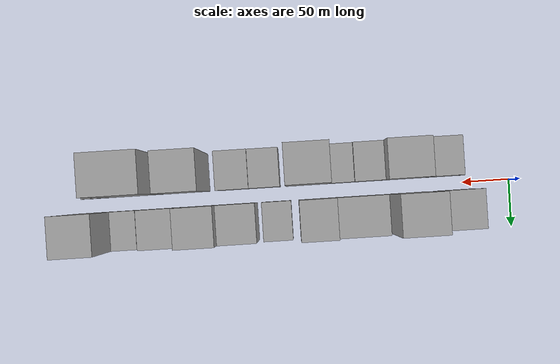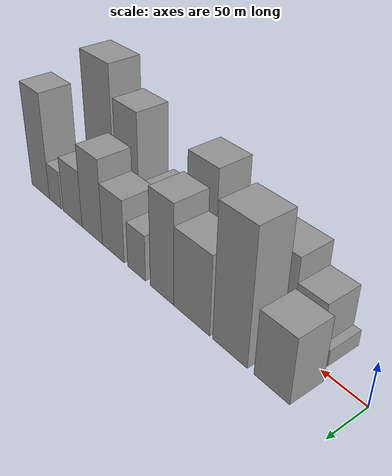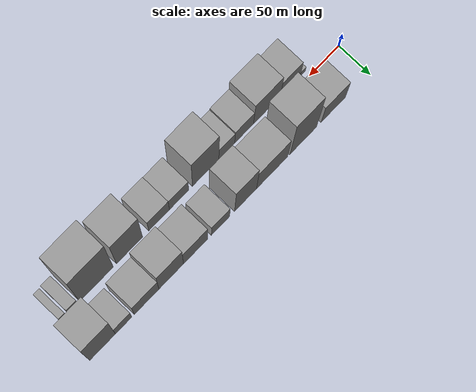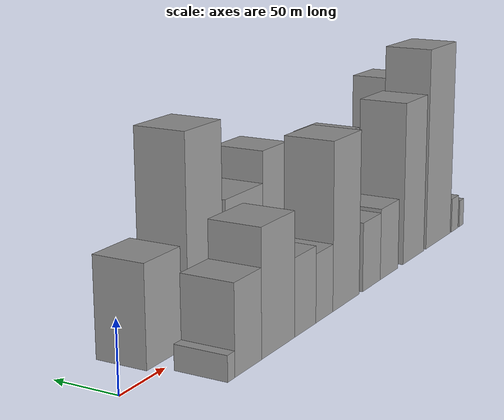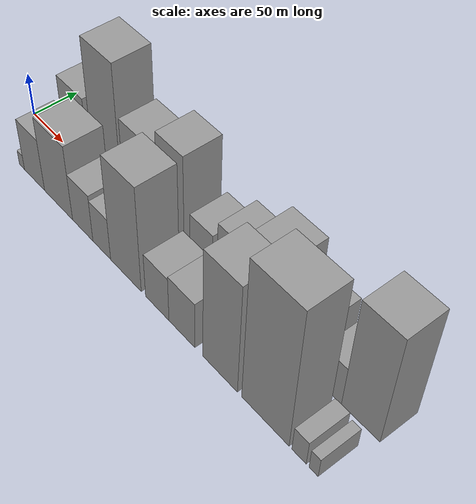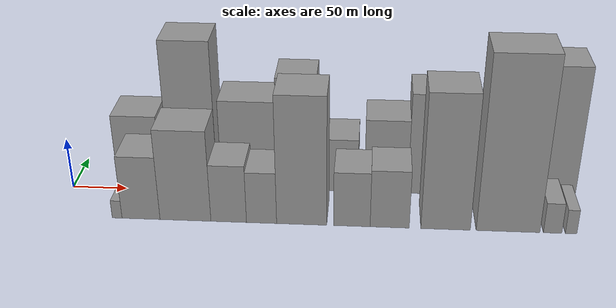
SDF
<sdf version="1.6">
 <world name="default">
  <scene>
   <sky><clouds><speed>12</speed></clouds></sky>
   <ambient>0.4 0.4 0.4 1</ambient>
   <background>0.7 0.7 0.7 1</background>
   <shadows>1</shadows>
  </scene>
  <gravity>0 0 -9.8066</gravity>
  <magnetic_field>6e-06 2.3e-05 -4.2e-05</magnetic_field>
  <physics default="0" name="default_physics" type="ode">
   <ode>
    <solver>
     <type>quick</type>
     <iters>10</iters>
     <sor>1.0</sor>
     <use_dynamic_moi_rescaling>0</use_dynamic_moi_rescaling>
    </solver>
    <constraints>
     <cfm>0</cfm>
     <erp>0.2</erp>
     <contact_max_correcting_vel>100</contact_max_correcting_vel>
     <contact_surface_layer>0.001</contact_surface_layer>
    </constraints>
   </ode>
   <max_step_size>0.004</max_step_size>
   <real_time_factor>1</real_time_factor>
   <real_time_update_rate>250</real_time_update_rate>
  </physics>
  <light name="sun" type="directional">
   <pose>0 0 10 0 0 0</pose>
   <diffuse>0.8 0.8 0.8 1</diffuse>
   <specular>0.2 0.2 0.2 1</specular>
   <attenuation>
    <range>1000</range>
    <constant>0.9</constant>
    <linear>0.01</linear>
    <quadratic>0.001</quadratic>
   </attenuation>
   <direction>-0.5 0.1 -0.9</direction>
  </light>
  <model name="building_1">
   <static>1</static>
   <pose>60.5274 27.5000 0 0.000000 0.000000 1.570796</pose>
   <link name="link">
    <pose>0 0 36.00 0 0 0</pose>
    <collision name="collision"><geometry><box><size>40.0000 41.0547 72.0000</size></box></geometry></collision>
    <visual name="visual">
     <cast_shadows>0</cast_shadows>
     <geometry><box><size>40.0000 41.0547 72.0000</size></box></geometry>
     <material>
      <script>
       <uri>model://grey_wall/materials/scripts</uri>
       <uri>model://grey_wall/materials/textures</uri>
       <name>vrc/grey_wall</name>
      </script>
     </material>
    </visual>
   </link>
  </model>
  <model name="building_2">
   <static>1</static>
   <pose>111.3470 27.5000 0 0.000000 0.000000 1.570796</pose>
   <link name="link">
    <pose>0 0 73.50 0 0 0</pose>
    <collision name="collision"><geometry><box><size>40.0000 44.5845 147.0000</size></box></geometry></collision>
    <visual name="visual">
     <cast_shadows>0</cast_shadows>
     <geometry><box><size>40.0000 44.5845 147.0000</size></box></geometry>
     <material>
      <script>
       <uri>model://grey_wall/materials/scripts</uri>
       <uri>model://grey_wall/materials/textures</uri>
       <name>vrc/grey_wall</name>
      </script>
     </material>
    </visual>
   </link>
  </model>
  <model name="building_3">
   <static>1</static>
   <pose>163.5459 27.5000 0 0.000000 0.000000 1.570796</pose>
   <link name="link">
    <pose>0 0 45.00 0 0 0</pose>
    <collision name="collision"><geometry><box><size>40.0000 51.8133 90.0000</size></box></geometry></collision>
    <visual name="visual">
     <cast_shadows>0</cast_shadows>
     <geometry><box><size>40.0000 51.8133 90.0000</size></box></geometry>
     <material>
      <script>
       <uri>model://grey_wall/materials/scripts</uri>
       <uri>model://grey_wall/materials/textures</uri>
       <name>vrc/grey_wall</name>
      </script>
     </material>
    </visual>
   </link>
  </model>
  <model name="building_4">
   <static>1</static>
   <pose>207.6033 27.5000 0 0.000000 0.000000 1.570796</pose>
   <link name="link">
    <pose>0 0 57.00 0 0 0</pose>
    <collision name="collision"><geometry><box><size>40.0000 36.3016 114.0000</size></box></geometry></collision>
    <visual name="visual">
     <cast_shadows>0</cast_shadows>
     <geometry><box><size>40.0000 36.3016 114.0000</size></box></geometry>
     <material>
      <script>
       <uri>model://grey_wall/materials/scripts</uri>
       <uri>model://grey_wall/materials/textures</uri>
       <name>vrc/grey_wall</name>
      </script>
     </material>
    </visual>
   </link>
  </model>
  <model name="building_5">
   <static>1</static>
   <pose>248.8121 27.5000 0 0.000000 0.000000 1.570796</pose>
   <link name="link">
    <pose>0 0 27.00 0 0 0</pose>
    <collision name="collision"><geometry><box><size>40.0000 30.1159 54.0000</size></box></geometry></collision>
    <visual name="visual">
     <cast_shadows>0</cast_shadows>
     <geometry><box><size>40.0000 30.1159 54.0000</size></box></geometry>
     <material>
      <script>
       <uri>model://grey_wall/materials/scripts</uri>
       <uri>model://grey_wall/materials/textures</uri>
       <name>vrc/grey_wall</name>
      </script>
     </material>
    </visual>
   </link>
  </model>
  <model name="building_6">
   <static>1</static>
   <pose>289.7577 27.5000 0 0.000000 0.000000 1.570796</pose>
   <link name="link">
    <pose>0 0 37.50 0 0 0</pose>
    <collision name="collision"><geometry><box><size>40.0000 39.7754 75.0000</size></box></geometry></collision>
    <visual name="visual">
     <cast_shadows>0</cast_shadows>
     <geometry><box><size>40.0000 39.7754 75.0000</size></box></geometry>
     <material>
      <script>
       <uri>model://grey_wall/materials/scripts</uri>
       <uri>model://grey_wall/materials/textures</uri>
       <name>vrc/grey_wall</name>
      </script>
     </material>
    </visual>
   </link>
  </model>
  <model name="building_7">
   <static>1</static>
   <pose>329.6346 27.5000 0 0.000000 0.000000 1.570796</pose>
   <link name="link">
    <pose>0 0 51.00 0 0 0</pose>
    <collision name="collision"><geometry><box><size>40.0000 39.9784 102.0000</size></box></geometry></collision>
    <visual name="visual">
     <cast_shadows>0</cast_shadows>
     <geometry><box><size>40.0000 39.9784 102.0000</size></box></geometry>
     <material>
      <script>
       <uri>model://grey_wall/materials/scripts</uri>
       <uri>model://grey_wall/materials/textures</uri>
       <name>vrc/grey_wall</name>
      </script>
     </material>
    </visual>
   </link>
  </model>
  <model name="building_8">
   <static>1</static>
   <pose>369.5319 27.5000 0 0.000000 0.000000 1.570796</pose>
   <link name="link">
    <pose>0 0 34.50 0 0 0</pose>
    <collision name="collision"><geometry><box><size>40.0000 39.8163 69.0000</size></box></geometry></collision>
    <visual name="visual">
     <cast_shadows>0</cast_shadows>
     <geometry><box><size>40.0000 39.8163 69.0000</size></box></geometry>
     <material>
      <script>
       <uri>model://grey_wall/materials/scripts</uri>
       <uri>model://grey_wall/materials/textures</uri>
       <name>vrc/grey_wall</name>
      </script>
     </material>
    </visual>
   </link>
  </model>
  <model name="building_9">
   <static>1</static>
   <pose>406.6243 27.5000 0 0.000000 0.000000 1.570796</pose>
   <link name="link">
    <pose>0 0 24.00 0 0 0</pose>
    <collision name="collision"><geometry><box><size>40.0000 26.3684 48.0000</size></box></geometry></collision>
    <visual name="visual">
     <cast_shadows>0</cast_shadows>
     <geometry><box><size>40.0000 26.3684 48.0000</size></box></geometry>
     <material>
      <script>
       <uri>model://grey_wall/materials/scripts</uri>
       <uri>model://grey_wall/materials/textures</uri>
       <name>vrc/grey_wall</name>
      </script>
     </material>
    </visual>
   </link>
  </model>
  <model name="building_10">
   <static>1</static>
   <pose>440.4687 27.5000 0 0.000000 0.000000 1.570796</pose>
   <link name="link">
    <pose>0 0 66.00 0 0 0</pose>
    <collision name="collision"><geometry><box><size>40.0000 41.3204 132.0000</size></box></geometry></collision>
    <visual name="visual">
     <cast_shadows>0</cast_shadows>
     <geometry><box><size>40.0000 41.3204 132.0000</size></box></geometry>
     <material>
      <script>
       <uri>model://grey_wall/materials/scripts</uri>
       <uri>model://grey_wall/materials/textures</uri>
       <name>vrc/grey_wall</name>
      </script>
     </material>
    </visual>
   </link>
  </model>
  <model name="building_11">
   <static>1</static>
   <pose>53.3683 -27.5000 0 0.000000 0.000000 1.570796</pose>
   <link name="link">
    <pose>0 0 9.00 0 0 0</pose>
    <collision name="collision"><geometry><box><size>40.0000 8.7366 18.0000</size></box></geometry></collision>
    <visual name="visual">
     <cast_shadows>0</cast_shadows>
     <geometry><box><size>40.0000 8.7366 18.0000</size></box></geometry>
     <material>
      <script>
       <uri>model://grey_wall/materials/scripts</uri>
       <uri>model://grey_wall/materials/textures</uri>
       <name>vrc/grey_wall</name>
      </script>
     </material>
    </visual>
   </link>
  </model>
  <model name="building_12">
   <static>1</static>
   <pose>74.6329 -27.5000 0 0.000000 0.000000 1.570796</pose>
   <link name="link">
    <pose>0 0 31.50 0 0 0</pose>
    <collision name="collision"><geometry><box><size>40.0000 33.7925 63.0000</size></box></geometry></collision>
    <visual name="visual">
     <cast_shadows>0</cast_shadows>
     <geometry><box><size>40.0000 33.7925 63.0000</size></box></geometry>
     <material>
      <script>
       <uri>model://grey_wall/materials/scripts</uri>
       <uri>model://grey_wall/materials/textures</uri>
       <name>vrc/grey_wall</name>
      </script>
     </material>
    </visual>
   </link>
  </model>
  <model name="building_13">
   <static>1</static>
   <pose>114.0617 -27.5000 0 0.000000 0.000000 1.570796</pose>
   <link name="link">
    <pose>0 0 45.00 0 0 0</pose>
    <collision name="collision"><geometry><box><size>40.0000 45.0651 90.0000</size></box></geometry></collision>
    <visual name="visual">
     <cast_shadows>0</cast_shadows>
     <geometry><box><size>40.0000 45.0651 90.0000</size></box></geometry>
     <material>
      <script>
       <uri>model://grey_wall/materials/scripts</uri>
       <uri>model://grey_wall/materials/textures</uri>
       <name>vrc/grey_wall</name>
      </script>
     </material>
    </visual>
   </link>
  </model>
  <model name="building_14">
   <static>1</static>
   <pose>152.2538 -27.5000 0 0.000000 0.000000 1.570796</pose>
   <link name="link">
    <pose>0 0 28.50 0 0 0</pose>
    <collision name="collision"><geometry><box><size>40.0000 31.3191 57.0000</size></box></geometry></collision>
    <visual name="visual">
     <cast_shadows>0</cast_shadows>
     <geometry><box><size>40.0000 31.3191 57.0000</size></box></geometry>
     <material>
      <script>
       <uri>model://grey_wall/materials/scripts</uri>
       <uri>model://grey_wall/materials/textures</uri>
       <name>vrc/grey_wall</name>
      </script>
     </material>
    </visual>
   </link>
  </model>
  <model name="building_15">
   <static>1</static>
   <pose>181.1343 -27.5000 0 0.000000 0.000000 1.570796</pose>
   <link name="link">
    <pose>0 0 25.50 0 0 0</pose>
    <collision name="collision"><geometry><box><size>40.0000 26.4420 51.0000</size></box></geometry></collision>
    <visual name="visual">
     <cast_shadows>0</cast_shadows>
     <geometry><box><size>40.0000 26.4420 51.0000</size></box></geometry>
     <material>
      <script>
       <uri>model://grey_wall/materials/scripts</uri>
       <uri>model://grey_wall/materials/textures</uri>
       <name>vrc/grey_wall</name>
      </script>
     </material>
    </visual>
   </link>
  </model>
  <model name="building_16">
   <static>1</static>
   <pose>216.2459 -27.5000 0 0.000000 0.000000 1.570796</pose>
   <link name="link">
    <pose>0 0 63.00 0 0 0</pose>
    <collision name="collision"><geometry><box><size>40.0000 43.7812 126.0000</size></box></geometry></collision>
    <visual name="visual">
     <cast_shadows>0</cast_shadows>
     <geometry><box><size>40.0000 43.7812 126.0000</size></box></geometry>
     <material>
      <script>
       <uri>model://grey_wall/materials/scripts</uri>
       <uri>model://grey_wall/materials/textures</uri>
       <name>vrc/grey_wall</name>
      </script>
     </material>
    </visual>
   </link>
  </model>
  <model name="building_17">
   <static>1</static>
   <pose>260.0047 -27.5000 0 0.000000 0.000000 1.570796</pose>
   <link name="link">
    <pose>0 0 27.00 0 0 0</pose>
    <collision name="collision"><geometry><box><size>40.0000 31.7364 54.0000</size></box></geometry></collision>
    <visual name="visual">
     <cast_shadows>0</cast_shadows>
     <geometry><box><size>40.0000 31.7364 54.0000</size></box></geometry>
     <material>
      <script>
       <uri>model://grey_wall/materials/scripts</uri>
       <uri>model://grey_wall/materials/textures</uri>
       <name>vrc/grey_wall</name>
      </script>
     </material>
    </visual>
   </link>
  </model>
  <model name="building_18">
   <static>1</static>
   <pose>292.7698 -27.5000 0 0.000000 0.000000 1.570796</pose>
   <link name="link">
    <pose>0 0 28.50 0 0 0</pose>
    <collision name="collision"><geometry><box><size>40.0000 33.7938 57.0000</size></box></geometry></collision>
    <visual name="visual">
     <cast_shadows>0</cast_shadows>
     <geometry><box><size>40.0000 33.7938 57.0000</size></box></geometry>
     <material>
      <script>
       <uri>model://grey_wall/materials/scripts</uri>
       <uri>model://grey_wall/materials/textures</uri>
       <name>vrc/grey_wall</name>
      </script>
     </material>
    </visual>
   </link>
  </model>
  <model name="building_19">
   <static>1</static>
   <pose>340.9510 -27.5000 0 0.000000 0.000000 1.570796</pose>
   <link name="link">
    <pose>0 0 66.00 0 0 0</pose>
    <collision name="collision"><geometry><box><size>40.0000 42.5685 132.0000</size></box></geometry></collision>
    <visual name="visual">
     <cast_shadows>0</cast_shadows>
     <geometry><box><size>40.0000 42.5685 132.0000</size></box></geometry>
     <material>
      <script>
       <uri>model://grey_wall/materials/scripts</uri>
       <uri>model://grey_wall/materials/textures</uri>
       <name>vrc/grey_wall</name>
      </script>
     </material>
    </visual>
   </link>
  </model>
  <model name="building_20">
   <static>1</static>
   <pose>394.4320 -27.5000 0 0.000000 0.000000 1.570796</pose>
   <link name="link">
    <pose>0 0 84.00 0 0 0</pose>
    <collision name="collision"><geometry><box><size>40.0000 54.3934 168.0000</size></box></geometry></collision>
    <visual name="visual">
     <cast_shadows>0</cast_shadows>
     <geometry><box><size>40.0000 54.3934 168.0000</size></box></geometry>
     <material>
      <script>
       <uri>model://grey_wall/materials/scripts</uri>
       <uri>model://grey_wall/materials/textures</uri>
       <name>vrc/grey_wall</name>
      </script>
     </material>
    </visual>
   </link>
  </model>
  <model name="building_21">
   <static>1</static>
   <pose>432.4580 -27.5000 0 0.000000 0.000000 1.570796</pose>
   <link name="link">
    <pose>0 0 15.00 0 0 0</pose>
    <collision name="collision"><geometry><box><size>40.0000 15.6587 30.0000</size></box></geometry></collision>
    <visual name="visual">
     <cast_shadows>0</cast_shadows>
     <geometry><box><size>40.0000 15.6587 30.0000</size></box></geometry>
     <material>
      <script>
       <uri>model://grey_wall/materials/scripts</uri>
       <uri>model://grey_wall/materials/textures</uri>
       <name>vrc/grey_wall</name>
      </script>
     </material>
    </visual>
   </link>
  </model>
  <model name="building_22">
   <static>1</static>
   <pose>448.1713 -27.5000 0 0.000000 0.000000 1.570796</pose>
   <link name="link">
    <pose>0 0 12.00 0 0 0</pose>
    <collision name="collision"><geometry><box><size>40.0000 9.7679 24.0000</size></box></geometry></collision>
    <visual name="visual">
     <cast_shadows>0</cast_shadows>
     <geometry><box><size>40.0000 9.7679 24.0000</size></box></geometry>
     <material>
      <script>
       <uri>model://grey_wall/materials/scripts</uri>
       <uri>model://grey_wall/materials/textures</uri>
       <name>vrc/grey_wall</name>
      </script>
     </material>
    </visual>
   </link>
  </model>
 </world>
</sdf>
